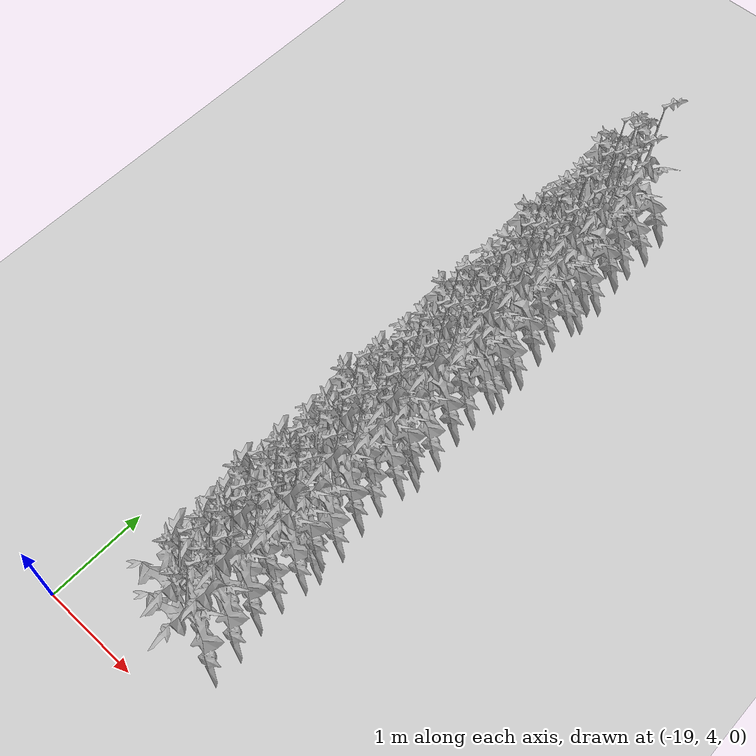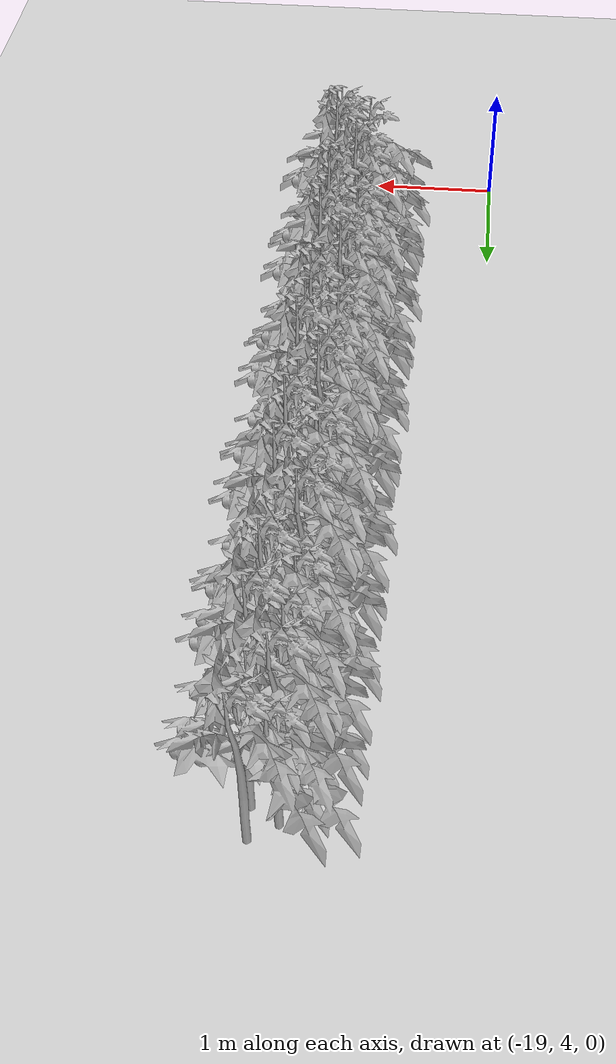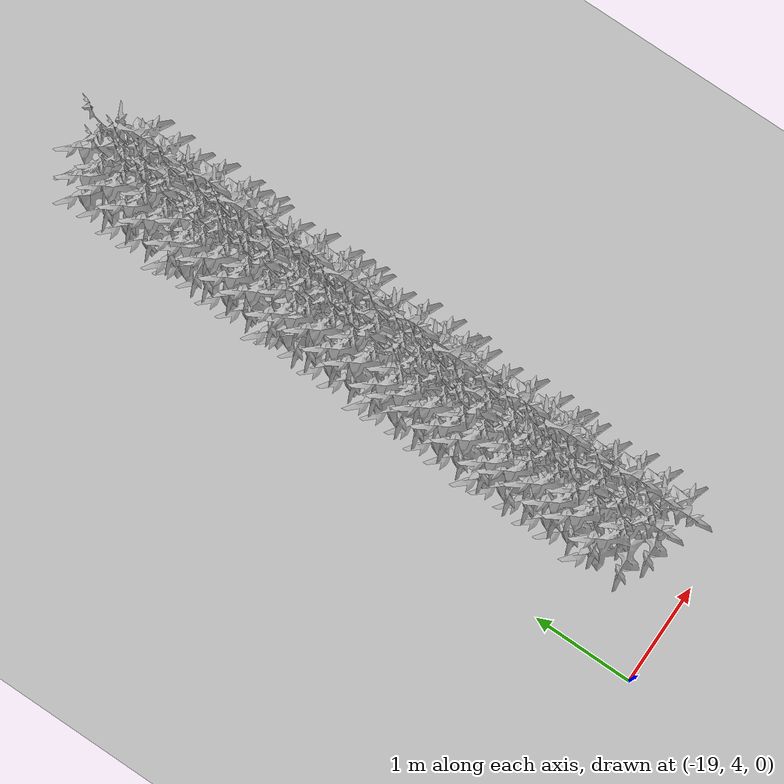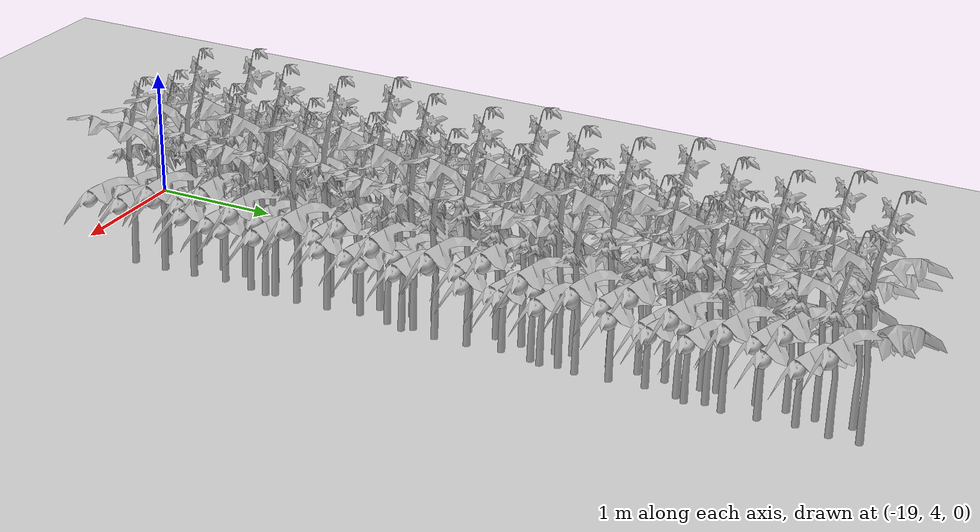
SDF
<sdf version="1.6">
 <world name="default">
  <model name="ground_plane">
   <static>1</static>
   <link name="link">
    <collision name="collision">
     <geometry><plane><normal>0 0 1</normal><size>100 100</size></plane></geometry>
     <surface>
      <contact><collide_bitmask>65535</collide_bitmask></contact>
      <friction><ode><mu>100</mu><mu2>50</mu2></ode></friction>
     </surface>
    </collision>
    <visual name="visual">
     <cast_shadows>0</cast_shadows>
     <geometry><plane><normal>0 0 1</normal><size>100 100</size></plane></geometry>
     <material>
      <script><uri>file://media/materials/scripts/gazebo.material</uri><name>Gazebo/Grey</name></script>
     </material>
    </visual>
   </link>
  </model>
  <model name="Front_Plant_1_16">
   <model name="tomato_plant_medium">
    <static>1</static>
    <link name="link">
     <collision name="collision">
      <pose>0 0 0 1.5708 -0 0</pose>
      <geometry><mesh><scale>0.5 0.5 0.5</scale><uri>model://stick/meshes/stick.dae</uri></mesh></geometry>
     </collision>
     <visual name="visual">
      <geometry>
       <mesh><scale>5e-06 5e-06 6e-06</scale><uri>model://tomato_plant_medium/meshes/tomato-plant.dae</uri></mesh>
      </geometry>
     </visual>
    </link>
    <pose>0.087453 -0.595994 0.012396 0 -0 0</pose>
   </model>
   <model name="tomato_plant_medium_0">
    <static>1</static>
    <link name="link">
     <collision name="collision">
      <pose>0 0 0 1.5708 -0 0</pose>
      <geometry><mesh><scale>0.5 0.5 0.5</scale><uri>model://stick/meshes/stick.dae</uri></mesh></geometry>
     </collision>
     <visual name="visual">
      <geometry>
       <mesh><scale>5e-06 5e-06 6e-06</scale><uri>model://tomato_plant_medium/meshes/tomato-plant.dae</uri></mesh>
      </geometry>
     </visual>
    </link>
    <pose>-0.086166 -0.251822 0.012396 0 -0 0</pose>
   </model>
   <model name="tomato_plant_medium_1">
    <static>1</static>
    <link name="link">
     <collision name="collision">
      <pose>0 0 0 1.5708 -0 0</pose>
      <geometry><mesh><scale>0.5 0.5 0.5</scale><uri>model://stick/meshes/stick.dae</uri></mesh></geometry>
     </collision>
     <visual name="visual">
      <geometry>
       <mesh><scale>5e-06 5e-06 6e-06</scale><uri>model://tomato_plant_medium/meshes/tomato-plant.dae</uri></mesh>
      </geometry>
     </visual>
    </link>
    <pose>0.080199 0.118127 0.012396 0 -0 0</pose>
   </model>
   <model name="tomato_plant_small">
    <static>1</static>
    <link name="link">
     <collision name="collision">
      <pose>0 0 0 1.5708 -0 0</pose>
      <geometry><mesh><scale>0.5 0.45 0.5</scale><uri>model://stick/meshes/stick.dae</uri></mesh></geometry>
     </collision>
     <visual name="visual">
      <geometry>
       <mesh><scale>5e-06 5e-06 5e-06</scale><uri>model://tomato_plant_small/meshes/tomato-plant.dae</uri></mesh>
      </geometry>
     </visual>
    </link>
    <pose>0.099683 -1.12011 0.012396 0 -0 0</pose>
   </model>
   <model name="tomato_plant_small_0">
    <static>1</static>
    <link name="link">
     <collision name="collision">
      <pose>0 0 0 1.5708 -0 0</pose>
      <geometry><mesh><scale>0.5 0.45 0.5</scale><uri>model://stick/meshes/stick.dae</uri></mesh></geometry>
     </collision>
     <visual name="visual">
      <geometry>
       <mesh><scale>5e-06 5e-06 5e-06</scale><uri>model://tomato_plant_small/meshes/tomato-plant.dae</uri></mesh>
      </geometry>
     </visual>
    </link>
    <pose>-0.138771 -0.983982 0.012396 0 -0 0</pose>
   </model>
   <model name="tomato_plant_small_1">
    <static>1</static>
    <link name="link">
     <collision name="collision">
      <pose>0 0 0 1.5708 -0 0</pose>
      <geometry><mesh><scale>0.5 0.45 0.5</scale><uri>model://stick/meshes/stick.dae</uri></mesh></geometry>
     </collision>
     <visual name="visual">
      <geometry>
       <mesh><scale>5e-06 5e-06 5e-06</scale><uri>model://tomato_plant_small/meshes/tomato-plant.dae</uri></mesh>
      </geometry>
     </visual>
    </link>
    <pose>0.101334 -0.848814 0.012396 0 -0 0</pose>
   </model>
   <model name="tomato_plant_small_2">
    <static>1</static>
    <link name="link">
     <collision name="collision">
      <pose>0 0 0 1.5708 -0 0</pose>
      <geometry><mesh><scale>0.5 0.45 0.5</scale><uri>model://stick/meshes/stick.dae</uri></mesh></geometry>
     </collision>
     <visual name="visual">
      <geometry>
       <mesh><scale>5e-06 5e-06 5e-06</scale><uri>model://tomato_plant_small/meshes/tomato-plant.dae</uri></mesh>
      </geometry>
     </visual>
    </link>
    <pose>-0.103369 -0.683189 0.012396 0 -0 0</pose>
   </model>
   <model name="tomato_plant_small_3">
    <static>1</static>
    <link name="link">
     <collision name="collision">
      <pose>0 0 0 1.5708 -0 0</pose>
      <geometry><mesh><scale>0.5 0.45 0.5</scale><uri>model://stick/meshes/stick.dae</uri></mesh></geometry>
     </collision>
     <visual name="visual">
      <geometry>
       <mesh><scale>5e-06 5e-06 5e-06</scale><uri>model://tomato_plant_small/meshes/tomato-plant.dae</uri></mesh>
      </geometry>
     </visual>
    </link>
    <pose>-0.104381 -0.464811 0.012396 0 -0 0</pose>
   </model>
   <model name="tomato_plant_small_4">
    <static>1</static>
    <link name="link">
     <collision name="collision">
      <pose>0 0 0 1.5708 -0 0</pose>
      <geometry><mesh><scale>0.5 0.45 0.5</scale><uri>model://stick/meshes/stick.dae</uri></mesh></geometry>
     </collision>
     <visual name="visual">
      <geometry>
       <mesh><scale>5e-06 5e-06 5e-06</scale><uri>model://tomato_plant_small/meshes/tomato-plant.dae</uri></mesh>
      </geometry>
     </visual>
    </link>
    <pose>0.055604 -0.336879 0.012396 0 -0 0</pose>
   </model>
   <model name="tomato_plant_small_5">
    <static>1</static>
    <link name="link">
     <collision name="collision">
      <pose>0 0 0 1.5708 -0 0</pose>
      <geometry><mesh><scale>0.5 0.45 0.5</scale><uri>model://stick/meshes/stick.dae</uri></mesh></geometry>
     </collision>
     <visual name="visual">
      <geometry>
       <mesh><scale>5e-06 5e-06 5e-06</scale><uri>model://tomato_plant_small/meshes/tomato-plant.dae</uri></mesh>
      </geometry>
     </visual>
    </link>
    <pose>0.085059 -0.092572 0.012396 0 -0 0</pose>
   </model>
   <model name="tomato_plant_small_6">
    <static>1</static>
    <link name="link">
     <collision name="collision">
      <pose>0 0 0 1.5708 -0 0</pose>
      <geometry><mesh><scale>0.5 0.45 0.5</scale><uri>model://stick/meshes/stick.dae</uri></mesh></geometry>
     </collision>
     <visual name="visual">
      <geometry>
       <mesh><scale>5e-06 5e-06 5e-06</scale><uri>model://tomato_plant_small/meshes/tomato-plant.dae</uri></mesh>
      </geometry>
     </visual>
    </link>
    <pose>-0.096345 0.008888 0.012396 0 -0 0</pose>
   </model>
   <static>0</static>
   <pose>-17.8439 5.71404 0 0 -0 0</pose>
  </model>
  <model name="Front_Plant_1_17">
   <model name="tomato_plant_medium">
    <static>1</static>
    <link name="link">
     <collision name="collision">
      <pose>0 0 0 1.5708 -0 0</pose>
      <geometry><mesh><scale>0.5 0.5 0.5</scale><uri>model://stick/meshes/stick.dae</uri></mesh></geometry>
     </collision>
     <visual name="visual">
      <geometry>
       <mesh><scale>5e-06 5e-06 6e-06</scale><uri>model://tomato_plant_medium/meshes/tomato-plant.dae</uri></mesh>
      </geometry>
     </visual>
    </link>
    <pose>0.087453 -0.595994 0.012396 0 -0 0</pose>
   </model>
   <model name="tomato_plant_medium_0">
    <static>1</static>
    <link name="link">
     <collision name="collision">
      <pose>0 0 0 1.5708 -0 0</pose>
      <geometry><mesh><scale>0.5 0.5 0.5</scale><uri>model://stick/meshes/stick.dae</uri></mesh></geometry>
     </collision>
     <visual name="visual">
      <geometry>
       <mesh><scale>5e-06 5e-06 6e-06</scale><uri>model://tomato_plant_medium/meshes/tomato-plant.dae</uri></mesh>
      </geometry>
     </visual>
    </link>
    <pose>-0.086166 -0.251822 0.012396 0 -0 0</pose>
   </model>
   <model name="tomato_plant_medium_1">
    <static>1</static>
    <link name="link">
     <collision name="collision">
      <pose>0 0 0 1.5708 -0 0</pose>
      <geometry><mesh><scale>0.5 0.5 0.5</scale><uri>model://stick/meshes/stick.dae</uri></mesh></geometry>
     </collision>
     <visual name="visual">
      <geometry>
       <mesh><scale>5e-06 5e-06 6e-06</scale><uri>model://tomato_plant_medium/meshes/tomato-plant.dae</uri></mesh>
      </geometry>
     </visual>
    </link>
    <pose>0.080199 0.118127 0.012396 0 -0 0</pose>
   </model>
   <model name="tomato_plant_small">
    <static>1</static>
    <link name="link">
     <collision name="collision">
      <pose>0 0 0 1.5708 -0 0</pose>
      <geometry><mesh><scale>0.5 0.45 0.5</scale><uri>model://stick/meshes/stick.dae</uri></mesh></geometry>
     </collision>
     <visual name="visual">
      <geometry>
       <mesh><scale>5e-06 5e-06 5e-06</scale><uri>model://tomato_plant_small/meshes/tomato-plant.dae</uri></mesh>
      </geometry>
     </visual>
    </link>
    <pose>0.099683 -1.12011 0.012396 0 -0 0</pose>
   </model>
   <model name="tomato_plant_small_0">
    <static>1</static>
    <link name="link">
     <collision name="collision">
      <pose>0 0 0 1.5708 -0 0</pose>
      <geometry><mesh><scale>0.5 0.45 0.5</scale><uri>model://stick/meshes/stick.dae</uri></mesh></geometry>
     </collision>
     <visual name="visual">
      <geometry>
       <mesh><scale>5e-06 5e-06 5e-06</scale><uri>model://tomato_plant_small/meshes/tomato-plant.dae</uri></mesh>
      </geometry>
     </visual>
    </link>
    <pose>-0.138771 -0.983982 0.012396 0 -0 0</pose>
   </model>
   <model name="tomato_plant_small_1">
    <static>1</static>
    <link name="link">
     <collision name="collision">
      <pose>0 0 0 1.5708 -0 0</pose>
      <geometry><mesh><scale>0.5 0.45 0.5</scale><uri>model://stick/meshes/stick.dae</uri></mesh></geometry>
     </collision>
     <visual name="visual">
      <geometry>
       <mesh><scale>5e-06 5e-06 5e-06</scale><uri>model://tomato_plant_small/meshes/tomato-plant.dae</uri></mesh>
      </geometry>
     </visual>
    </link>
    <pose>0.101334 -0.848814 0.012396 0 -0 0</pose>
   </model>
   <model name="tomato_plant_small_2">
    <static>1</static>
    <link name="link">
     <collision name="collision">
      <pose>0 0 0 1.5708 -0 0</pose>
      <geometry><mesh><scale>0.5 0.45 0.5</scale><uri>model://stick/meshes/stick.dae</uri></mesh></geometry>
     </collision>
     <visual name="visual">
      <geometry>
       <mesh><scale>5e-06 5e-06 5e-06</scale><uri>model://tomato_plant_small/meshes/tomato-plant.dae</uri></mesh>
      </geometry>
     </visual>
    </link>
    <pose>-0.103369 -0.683189 0.012396 0 -0 0</pose>
   </model>
   <model name="tomato_plant_small_3">
    <static>1</static>
    <link name="link">
     <collision name="collision">
      <pose>0 0 0 1.5708 -0 0</pose>
      <geometry><mesh><scale>0.5 0.45 0.5</scale><uri>model://stick/meshes/stick.dae</uri></mesh></geometry>
     </collision>
     <visual name="visual">
      <geometry>
       <mesh><scale>5e-06 5e-06 5e-06</scale><uri>model://tomato_plant_small/meshes/tomato-plant.dae</uri></mesh>
      </geometry>
     </visual>
    </link>
    <pose>-0.104381 -0.464811 0.012396 0 -0 0</pose>
   </model>
   <model name="tomato_plant_small_4">
    <static>1</static>
    <link name="link">
     <collision name="collision">
      <pose>0 0 0 1.5708 -0 0</pose>
      <geometry><mesh><scale>0.5 0.45 0.5</scale><uri>model://stick/meshes/stick.dae</uri></mesh></geometry>
     </collision>
     <visual name="visual">
      <geometry>
       <mesh><scale>5e-06 5e-06 5e-06</scale><uri>model://tomato_plant_small/meshes/tomato-plant.dae</uri></mesh>
      </geometry>
     </visual>
    </link>
    <pose>0.055604 -0.336879 0.012396 0 -0 0</pose>
   </model>
   <model name="tomato_plant_small_5">
    <static>1</static>
    <link name="link">
     <collision name="collision">
      <pose>0 0 0 1.5708 -0 0</pose>
      <geometry><mesh><scale>0.5 0.45 0.5</scale><uri>model://stick/meshes/stick.dae</uri></mesh></geometry>
     </collision>
     <visual name="visual">
      <geometry>
       <mesh><scale>5e-06 5e-06 5e-06</scale><uri>model://tomato_plant_small/meshes/tomato-plant.dae</uri></mesh>
      </geometry>
     </visual>
    </link>
    <pose>0.085059 -0.092572 0.012396 0 -0 0</pose>
   </model>
   <model name="tomato_plant_small_6">
    <static>1</static>
    <link name="link">
     <collision name="collision">
      <pose>0 0 0 1.5708 -0 0</pose>
      <geometry><mesh><scale>0.5 0.45 0.5</scale><uri>model://stick/meshes/stick.dae</uri></mesh></geometry>
     </collision>
     <visual name="visual">
      <geometry>
       <mesh><scale>5e-06 5e-06 5e-06</scale><uri>model://tomato_plant_small/meshes/tomato-plant.dae</uri></mesh>
      </geometry>
     </visual>
    </link>
    <pose>-0.096345 0.008888 0.012396 0 -0 0</pose>
   </model>
   <static>0</static>
   <pose>-17.8348 6.88553 0 0 -0 0</pose>
  </model>
  <model name="Front_Plant_1_18">
   <model name="tomato_plant_medium">
    <static>1</static>
    <link name="link">
     <collision name="collision">
      <pose>0 0 0 1.5708 -0 0</pose>
      <geometry><mesh><scale>0.5 0.5 0.5</scale><uri>model://stick/meshes/stick.dae</uri></mesh></geometry>
     </collision>
     <visual name="visual">
      <geometry>
       <mesh><scale>5e-06 5e-06 6e-06</scale><uri>model://tomato_plant_medium/meshes/tomato-plant.dae</uri></mesh>
      </geometry>
     </visual>
    </link>
    <pose>0.087453 -0.595994 0.012396 0 -0 0</pose>
   </model>
   <model name="tomato_plant_medium_0">
    <static>1</static>
    <link name="link">
     <collision name="collision">
      <pose>0 0 0 1.5708 -0 0</pose>
      <geometry><mesh><scale>0.5 0.5 0.5</scale><uri>model://stick/meshes/stick.dae</uri></mesh></geometry>
     </collision>
     <visual name="visual">
      <geometry>
       <mesh><scale>5e-06 5e-06 6e-06</scale><uri>model://tomato_plant_medium/meshes/tomato-plant.dae</uri></mesh>
      </geometry>
     </visual>
    </link>
    <pose>-0.086166 -0.251822 0.012396 0 -0 0</pose>
   </model>
   <model name="tomato_plant_medium_1">
    <static>1</static>
    <link name="link">
     <collision name="collision">
      <pose>0 0 0 1.5708 -0 0</pose>
      <geometry><mesh><scale>0.5 0.5 0.5</scale><uri>model://stick/meshes/stick.dae</uri></mesh></geometry>
     </collision>
     <visual name="visual">
      <geometry>
       <mesh><scale>5e-06 5e-06 6e-06</scale><uri>model://tomato_plant_medium/meshes/tomato-plant.dae</uri></mesh>
      </geometry>
     </visual>
    </link>
    <pose>0.080199 0.118127 0.012396 0 -0 0</pose>
   </model>
   <model name="tomato_plant_small">
    <static>1</static>
    <link name="link">
     <collision name="collision">
      <pose>0 0 0 1.5708 -0 0</pose>
      <geometry><mesh><scale>0.5 0.45 0.5</scale><uri>model://stick/meshes/stick.dae</uri></mesh></geometry>
     </collision>
     <visual name="visual">
      <geometry>
       <mesh><scale>5e-06 5e-06 5e-06</scale><uri>model://tomato_plant_small/meshes/tomato-plant.dae</uri></mesh>
      </geometry>
     </visual>
    </link>
    <pose>0.099683 -1.12011 0.012396 0 -0 0</pose>
   </model>
   <model name="tomato_plant_small_0">
    <static>1</static>
    <link name="link">
     <collision name="collision">
      <pose>0 0 0 1.5708 -0 0</pose>
      <geometry><mesh><scale>0.5 0.45 0.5</scale><uri>model://stick/meshes/stick.dae</uri></mesh></geometry>
     </collision>
     <visual name="visual">
      <geometry>
       <mesh><scale>5e-06 5e-06 5e-06</scale><uri>model://tomato_plant_small/meshes/tomato-plant.dae</uri></mesh>
      </geometry>
     </visual>
    </link>
    <pose>-0.138771 -0.983982 0.012396 0 -0 0</pose>
   </model>
   <model name="tomato_plant_small_1">
    <static>1</static>
    <link name="link">
     <collision name="collision">
      <pose>0 0 0 1.5708 -0 0</pose>
      <geometry><mesh><scale>0.5 0.45 0.5</scale><uri>model://stick/meshes/stick.dae</uri></mesh></geometry>
     </collision>
     <visual name="visual">
      <geometry>
       <mesh><scale>5e-06 5e-06 5e-06</scale><uri>model://tomato_plant_small/meshes/tomato-plant.dae</uri></mesh>
      </geometry>
     </visual>
    </link>
    <pose>0.101334 -0.848814 0.012396 0 -0 0</pose>
   </model>
   <model name="tomato_plant_small_2">
    <static>1</static>
    <link name="link">
     <collision name="collision">
      <pose>0 0 0 1.5708 -0 0</pose>
      <geometry><mesh><scale>0.5 0.45 0.5</scale><uri>model://stick/meshes/stick.dae</uri></mesh></geometry>
     </collision>
     <visual name="visual">
      <geometry>
       <mesh><scale>5e-06 5e-06 5e-06</scale><uri>model://tomato_plant_small/meshes/tomato-plant.dae</uri></mesh>
      </geometry>
     </visual>
    </link>
    <pose>-0.103369 -0.683189 0.012396 0 -0 0</pose>
   </model>
   <model name="tomato_plant_small_3">
    <static>1</static>
    <link name="link">
     <collision name="collision">
      <pose>0 0 0 1.5708 -0 0</pose>
      <geometry><mesh><scale>0.5 0.45 0.5</scale><uri>model://stick/meshes/stick.dae</uri></mesh></geometry>
     </collision>
     <visual name="visual">
      <geometry>
       <mesh><scale>5e-06 5e-06 5e-06</scale><uri>model://tomato_plant_small/meshes/tomato-plant.dae</uri></mesh>
      </geometry>
     </visual>
    </link>
    <pose>-0.104381 -0.464811 0.012396 0 -0 0</pose>
   </model>
   <model name="tomato_plant_small_4">
    <static>1</static>
    <link name="link">
     <collision name="collision">
      <pose>0 0 0 1.5708 -0 0</pose>
      <geometry><mesh><scale>0.5 0.45 0.5</scale><uri>model://stick/meshes/stick.dae</uri></mesh></geometry>
     </collision>
     <visual name="visual">
      <geometry>
       <mesh><scale>5e-06 5e-06 5e-06</scale><uri>model://tomato_plant_small/meshes/tomato-plant.dae</uri></mesh>
      </geometry>
     </visual>
    </link>
    <pose>0.055604 -0.336879 0.012396 0 -0 0</pose>
   </model>
   <model name="tomato_plant_small_5">
    <static>1</static>
    <link name="link">
     <collision name="collision">
      <pose>0 0 0 1.5708 -0 0</pose>
      <geometry><mesh><scale>0.5 0.45 0.5</scale><uri>model://stick/meshes/stick.dae</uri></mesh></geometry>
     </collision>
     <visual name="visual">
      <geometry>
       <mesh><scale>5e-06 5e-06 5e-06</scale><uri>model://tomato_plant_small/meshes/tomato-plant.dae</uri></mesh>
      </geometry>
     </visual>
    </link>
    <pose>0.085059 -0.092572 0.012396 0 -0 0</pose>
   </model>
   <model name="tomato_plant_small_6">
    <static>1</static>
    <link name="link">
     <collision name="collision">
      <pose>0 0 0 1.5708 -0 0</pose>
      <geometry><mesh><scale>0.5 0.45 0.5</scale><uri>model://stick/meshes/stick.dae</uri></mesh></geometry>
     </collision>
     <visual name="visual">
      <geometry>
       <mesh><scale>5e-06 5e-06 5e-06</scale><uri>model://tomato_plant_small/meshes/tomato-plant.dae</uri></mesh>
      </geometry>
     </visual>
    </link>
    <pose>-0.096345 0.008888 0.012396 0 -0 0</pose>
   </model>
   <static>0</static>
   <pose>-17.8037 8.05581 0 0 -0 0</pose>
  </model>
  <model name="Front_Plant_1_19">
   <model name="tomato_plant_medium">
    <static>1</static>
    <link name="link">
     <collision name="collision">
      <pose>0 0 0 1.5708 -0 0</pose>
      <geometry><mesh><scale>0.5 0.5 0.5</scale><uri>model://stick/meshes/stick.dae</uri></mesh></geometry>
     </collision>
     <visual name="visual">
      <geometry>
       <mesh><scale>5e-06 5e-06 6e-06</scale><uri>model://tomato_plant_medium/meshes/tomato-plant.dae</uri></mesh>
      </geometry>
     </visual>
    </link>
    <pose>0.087453 -0.595994 0.012396 0 -0 0</pose>
   </model>
   <model name="tomato_plant_medium_0">
    <static>1</static>
    <link name="link">
     <collision name="collision">
      <pose>0 0 0 1.5708 -0 0</pose>
      <geometry><mesh><scale>0.5 0.5 0.5</scale><uri>model://stick/meshes/stick.dae</uri></mesh></geometry>
     </collision>
     <visual name="visual">
      <geometry>
       <mesh><scale>5e-06 5e-06 6e-06</scale><uri>model://tomato_plant_medium/meshes/tomato-plant.dae</uri></mesh>
      </geometry>
     </visual>
    </link>
    <pose>-0.086166 -0.251822 0.012396 0 -0 0</pose>
   </model>
   <model name="tomato_plant_medium_1">
    <static>1</static>
    <link name="link">
     <collision name="collision">
      <pose>0 0 0 1.5708 -0 0</pose>
      <geometry><mesh><scale>0.5 0.5 0.5</scale><uri>model://stick/meshes/stick.dae</uri></mesh></geometry>
     </collision>
     <visual name="visual">
      <geometry>
       <mesh><scale>5e-06 5e-06 6e-06</scale><uri>model://tomato_plant_medium/meshes/tomato-plant.dae</uri></mesh>
      </geometry>
     </visual>
    </link>
    <pose>0.080199 0.118127 0.012396 0 -0 0</pose>
   </model>
   <model name="tomato_plant_small">
    <static>1</static>
    <link name="link">
     <collision name="collision">
      <pose>0 0 0 1.5708 -0 0</pose>
      <geometry><mesh><scale>0.5 0.45 0.5</scale><uri>model://stick/meshes/stick.dae</uri></mesh></geometry>
     </collision>
     <visual name="visual">
      <geometry>
       <mesh><scale>5e-06 5e-06 5e-06</scale><uri>model://tomato_plant_small/meshes/tomato-plant.dae</uri></mesh>
      </geometry>
     </visual>
    </link>
    <pose>0.099683 -1.12011 0.012396 0 -0 0</pose>
   </model>
   <model name="tomato_plant_small_0">
    <static>1</static>
    <link name="link">
     <collision name="collision">
      <pose>0 0 0 1.5708 -0 0</pose>
      <geometry><mesh><scale>0.5 0.45 0.5</scale><uri>model://stick/meshes/stick.dae</uri></mesh></geometry>
     </collision>
     <visual name="visual">
      <geometry>
       <mesh><scale>5e-06 5e-06 5e-06</scale><uri>model://tomato_plant_small/meshes/tomato-plant.dae</uri></mesh>
      </geometry>
     </visual>
    </link>
    <pose>-0.138771 -0.983982 0.012396 0 -0 0</pose>
   </model>
   <model name="tomato_plant_small_1">
    <static>1</static>
    <link name="link">
     <collision name="collision">
      <pose>0 0 0 1.5708 -0 0</pose>
      <geometry><mesh><scale>0.5 0.45 0.5</scale><uri>model://stick/meshes/stick.dae</uri></mesh></geometry>
     </collision>
     <visual name="visual">
      <geometry>
       <mesh><scale>5e-06 5e-06 5e-06</scale><uri>model://tomato_plant_small/meshes/tomato-plant.dae</uri></mesh>
      </geometry>
     </visual>
    </link>
    <pose>0.101334 -0.848814 0.012396 0 -0 0</pose>
   </model>
   <model name="tomato_plant_small_2">
    <static>1</static>
    <link name="link">
     <collision name="collision">
      <pose>0 0 0 1.5708 -0 0</pose>
      <geometry><mesh><scale>0.5 0.45 0.5</scale><uri>model://stick/meshes/stick.dae</uri></mesh></geometry>
     </collision>
     <visual name="visual">
      <geometry>
       <mesh><scale>5e-06 5e-06 5e-06</scale><uri>model://tomato_plant_small/meshes/tomato-plant.dae</uri></mesh>
      </geometry>
     </visual>
    </link>
    <pose>-0.103369 -0.683189 0.012396 0 -0 0</pose>
   </model>
   <model name="tomato_plant_small_3">
    <static>1</static>
    <link name="link">
     <collision name="collision">
      <pose>0 0 0 1.5708 -0 0</pose>
      <geometry><mesh><scale>0.5 0.45 0.5</scale><uri>model://stick/meshes/stick.dae</uri></mesh></geometry>
     </collision>
     <visual name="visual">
      <geometry>
       <mesh><scale>5e-06 5e-06 5e-06</scale><uri>model://tomato_plant_small/meshes/tomato-plant.dae</uri></mesh>
      </geometry>
     </visual>
    </link>
    <pose>-0.104381 -0.464811 0.012396 0 -0 0</pose>
   </model>
   <model name="tomato_plant_small_4">
    <static>1</static>
    <link name="link">
     <collision name="collision">
      <pose>0 0 0 1.5708 -0 0</pose>
      <geometry><mesh><scale>0.5 0.45 0.5</scale><uri>model://stick/meshes/stick.dae</uri></mesh></geometry>
     </collision>
     <visual name="visual">
      <geometry>
       <mesh><scale>5e-06 5e-06 5e-06</scale><uri>model://tomato_plant_small/meshes/tomato-plant.dae</uri></mesh>
      </geometry>
     </visual>
    </link>
    <pose>0.055604 -0.336879 0.012396 0 -0 0</pose>
   </model>
   <model name="tomato_plant_small_5">
    <static>1</static>
    <link name="link">
     <collision name="collision">
      <pose>0 0 0 1.5708 -0 0</pose>
      <geometry><mesh><scale>0.5 0.45 0.5</scale><uri>model://stick/meshes/stick.dae</uri></mesh></geometry>
     </collision>
     <visual name="visual">
      <geometry>
       <mesh><scale>5e-06 5e-06 5e-06</scale><uri>model://tomato_plant_small/meshes/tomato-plant.dae</uri></mesh>
      </geometry>
     </visual>
    </link>
    <pose>0.085059 -0.092572 0.012396 0 -0 0</pose>
   </model>
   <model name="tomato_plant_small_6">
    <static>1</static>
    <link name="link">
     <collision name="collision">
      <pose>0 0 0 1.5708 -0 0</pose>
      <geometry><mesh><scale>0.5 0.45 0.5</scale><uri>model://stick/meshes/stick.dae</uri></mesh></geometry>
     </collision>
     <visual name="visual">
      <geometry>
       <mesh><scale>5e-06 5e-06 5e-06</scale><uri>model://tomato_plant_small/meshes/tomato-plant.dae</uri></mesh>
      </geometry>
     </visual>
    </link>
    <pose>-0.096345 0.008888 0.012396 0 -0 0</pose>
   </model>
   <static>0</static>
   <pose>-17.7938 9.16615 0 0 -0 0</pose>
  </model>
  <model name="Front_Plant_1_20">
   <model name="tomato_plant_medium">
    <static>1</static>
    <link name="link">
     <collision name="collision">
      <pose>0 0 0 1.5708 -0 0</pose>
      <geometry><mesh><scale>0.5 0.5 0.5</scale><uri>model://stick/meshes/stick.dae</uri></mesh></geometry>
     </collision>
     <visual name="visual">
      <geometry>
       <mesh><scale>5e-06 5e-06 6e-06</scale><uri>model://tomato_plant_medium/meshes/tomato-plant.dae</uri></mesh>
      </geometry>
     </visual>
    </link>
    <pose>0.087453 -0.595994 0.012396 0 -0 0</pose>
   </model>
   <model name="tomato_plant_medium_0">
    <static>1</static>
    <link name="link">
     <collision name="collision">
      <pose>0 0 0 1.5708 -0 0</pose>
      <geometry><mesh><scale>0.5 0.5 0.5</scale><uri>model://stick/meshes/stick.dae</uri></mesh></geometry>
     </collision>
     <visual name="visual">
      <geometry>
       <mesh><scale>5e-06 5e-06 6e-06</scale><uri>model://tomato_plant_medium/meshes/tomato-plant.dae</uri></mesh>
      </geometry>
     </visual>
    </link>
    <pose>-0.086166 -0.251822 0.012396 0 -0 0</pose>
   </model>
   <model name="tomato_plant_medium_1">
    <static>1</static>
    <link name="link">
     <collision name="collision">
      <pose>0 0 0 1.5708 -0 0</pose>
      <geometry><mesh><scale>0.5 0.5 0.5</scale><uri>model://stick/meshes/stick.dae</uri></mesh></geometry>
     </collision>
     <visual name="visual">
      <geometry>
       <mesh><scale>5e-06 5e-06 6e-06</scale><uri>model://tomato_plant_medium/meshes/tomato-plant.dae</uri></mesh>
      </geometry>
     </visual>
    </link>
    <pose>0.080199 0.118127 0.012396 0 -0 0</pose>
   </model>
   <model name="tomato_plant_small">
    <static>1</static>
    <link name="link">
     <collision name="collision">
      <pose>0 0 0 1.5708 -0 0</pose>
      <geometry><mesh><scale>0.5 0.45 0.5</scale><uri>model://stick/meshes/stick.dae</uri></mesh></geometry>
     </collision>
     <visual name="visual">
      <geometry>
       <mesh><scale>5e-06 5e-06 5e-06</scale><uri>model://tomato_plant_small/meshes/tomato-plant.dae</uri></mesh>
      </geometry>
     </visual>
    </link>
    <pose>0.099683 -1.12011 0.012396 0 -0 0</pose>
   </model>
   <model name="tomato_plant_small_0">
    <static>1</static>
    <link name="link">
     <collision name="collision">
      <pose>0 0 0 1.5708 -0 0</pose>
      <geometry><mesh><scale>0.5 0.45 0.5</scale><uri>model://stick/meshes/stick.dae</uri></mesh></geometry>
     </collision>
     <visual name="visual">
      <geometry>
       <mesh><scale>5e-06 5e-06 5e-06</scale><uri>model://tomato_plant_small/meshes/tomato-plant.dae</uri></mesh>
      </geometry>
     </visual>
    </link>
    <pose>-0.138771 -0.983982 0.012396 0 -0 0</pose>
   </model>
   <model name="tomato_plant_small_1">
    <static>1</static>
    <link name="link">
     <collision name="collision">
      <pose>0 0 0 1.5708 -0 0</pose>
      <geometry><mesh><scale>0.5 0.45 0.5</scale><uri>model://stick/meshes/stick.dae</uri></mesh></geometry>
     </collision>
     <visual name="visual">
      <geometry>
       <mesh><scale>5e-06 5e-06 5e-06</scale><uri>model://tomato_plant_small/meshes/tomato-plant.dae</uri></mesh>
      </geometry>
     </visual>
    </link>
    <pose>0.101334 -0.848814 0.012396 0 -0 0</pose>
   </model>
   <model name="tomato_plant_small_2">
    <static>1</static>
    <link name="link">
     <collision name="collision">
      <pose>0 0 0 1.5708 -0 0</pose>
      <geometry><mesh><scale>0.5 0.45 0.5</scale><uri>model://stick/meshes/stick.dae</uri></mesh></geometry>
     </collision>
     <visual name="visual">
      <geometry>
       <mesh><scale>5e-06 5e-06 5e-06</scale><uri>model://tomato_plant_small/meshes/tomato-plant.dae</uri></mesh>
      </geometry>
     </visual>
    </link>
    <pose>-0.103369 -0.683189 0.012396 0 -0 0</pose>
   </model>
   <model name="tomato_plant_small_3">
    <static>1</static>
    <link name="link">
     <collision name="collision">
      <pose>0 0 0 1.5708 -0 0</pose>
      <geometry><mesh><scale>0.5 0.45 0.5</scale><uri>model://stick/meshes/stick.dae</uri></mesh></geometry>
     </collision>
     <visual name="visual">
      <geometry>
       <mesh><scale>5e-06 5e-06 5e-06</scale><uri>model://tomato_plant_small/meshes/tomato-plant.dae</uri></mesh>
      </geometry>
     </visual>
    </link>
    <pose>-0.104381 -0.464811 0.012396 0 -0 0</pose>
   </model>
   <model name="tomato_plant_small_4">
    <static>1</static>
    <link name="link">
     <collision name="collision">
      <pose>0 0 0 1.5708 -0 0</pose>
      <geometry><mesh><scale>0.5 0.45 0.5</scale><uri>model://stick/meshes/stick.dae</uri></mesh></geometry>
     </collision>
     <visual name="visual">
      <geometry>
       <mesh><scale>5e-06 5e-06 5e-06</scale><uri>model://tomato_plant_small/meshes/tomato-plant.dae</uri></mesh>
      </geometry>
     </visual>
    </link>
    <pose>0.055604 -0.336879 0.012396 0 -0 0</pose>
   </model>
   <model name="tomato_plant_small_5">
    <static>1</static>
    <link name="link">
     <collision name="collision">
      <pose>0 0 0 1.5708 -0 0</pose>
      <geometry><mesh><scale>0.5 0.45 0.5</scale><uri>model://stick/meshes/stick.dae</uri></mesh></geometry>
     </collision>
     <visual name="visual">
      <geometry>
       <mesh><scale>5e-06 5e-06 5e-06</scale><uri>model://tomato_plant_small/meshes/tomato-plant.dae</uri></mesh>
      </geometry>
     </visual>
    </link>
    <pose>0.085059 -0.092572 0.012396 0 -0 0</pose>
   </model>
   <model name="tomato_plant_small_6">
    <static>1</static>
    <link name="link">
     <collision name="collision">
      <pose>0 0 0 1.5708 -0 0</pose>
      <geometry><mesh><scale>0.5 0.45 0.5</scale><uri>model://stick/meshes/stick.dae</uri></mesh></geometry>
     </collision>
     <visual name="visual">
      <geometry>
       <mesh><scale>5e-06 5e-06 5e-06</scale><uri>model://tomato_plant_small/meshes/tomato-plant.dae</uri></mesh>
      </geometry>
     </visual>
    </link>
    <pose>-0.096345 0.008888 0.012396 0 -0 0</pose>
   </model>
   <static>0</static>
   <pose>-17.7689 10.2681 0 0 -0 0</pose>
  </model>
 </world>
</sdf>
